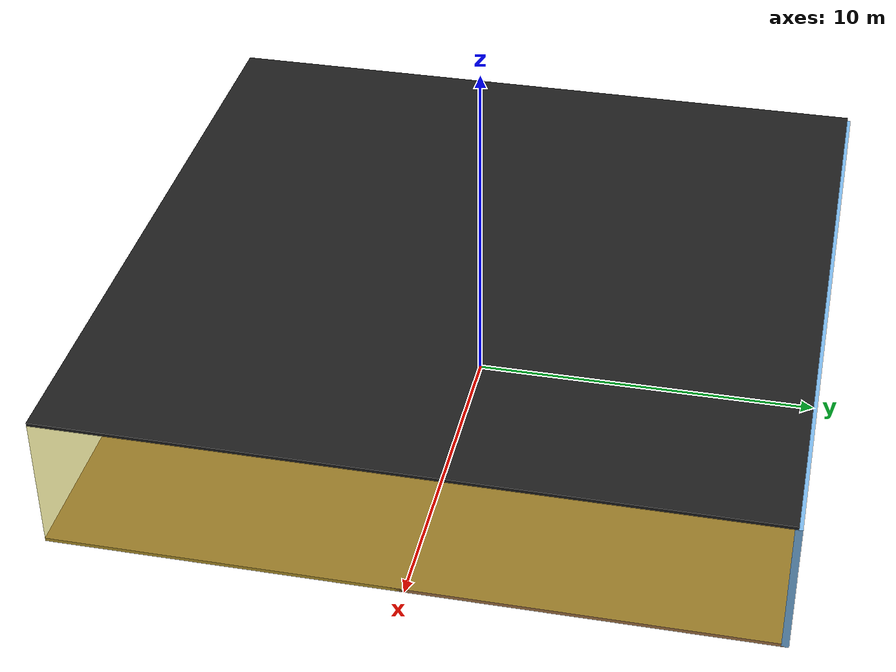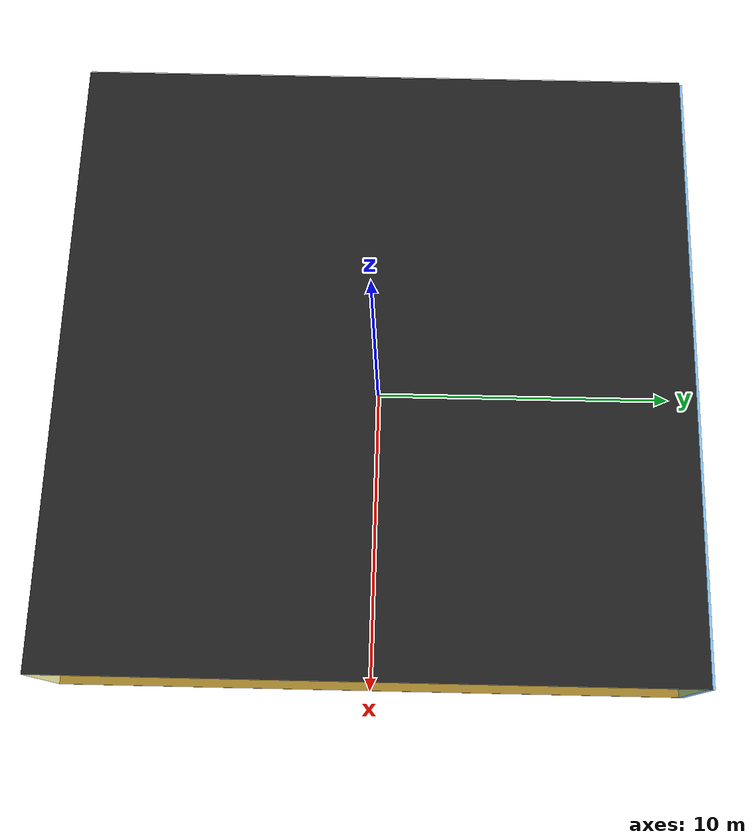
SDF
<sdf version="1.4">
 <world name="default">
  <physics type="ode">
   <max_step_size>0.001</max_step_size>
   <real_time_factor>1</real_time_factor>
   <real_time_update_rate>1000</real_time_update_rate>
   <gravity>0 0 -9.8</gravity>
  </physics>
  <scene><ambient>0.4 0.4 0.4 1</ambient><background>0.7 0.7 0.7 1</background><shadows>1</shadows></scene>
  <model name="Surrounding">
   <static>1</static>
   <link name="Ceiling">
    <collision name="Ceiling_Collision"><geometry><box><size>20 20 0.1</size></box></geometry></collision>
    <visual name="Ceiling_Visual">
     <geometry><box><size>20 20 0.1</size></box></geometry>
     <material>
      <script><uri>file://media/materials/scripts/gazebo.material</uri><name>Gazebo/Black</name></script>
     </material>
    </visual>
    <pose>0 0 4.05 0 0 0</pose>
   </link>
   <link name="Wall_South">
    <collision name="Wall_South_Collision">
     <geometry><box><size>20 0 4</size></box></geometry>
     <pose>0 0 2 0 -0 0</pose>
    </collision>
    <visual name="Wall_South_Visual">
     <pose>0 0 2 0 -0 0</pose>
     <geometry><box><size>20 0 4</size></box></geometry>
     <material>
      <script>
       <uri>file://media/materials/scripts/gazebo.material</uri>
       <name>Gazebo/YellowTransparent</name>
      </script>
     </material>
    </visual>
    <velocity_decay><linear>0</linear><angular>0</angular></velocity_decay>
    <pose>0 -10 0 0 -0 0</pose>
   </link>
   <link name="Wall_East">
    <collision name="Wall_21_Collision">
     <geometry><box><size>20 0 4</size></box></geometry>
     <pose>0 0 2 0 -0 0</pose>
    </collision>
    <visual name="Wall_21_Visual">
     <pose>0 0 2 0 -0 0</pose>
     <geometry><box><size>20 0 4</size></box></geometry>
     <material>
      <script>
       <uri>file://media/materials/scripts/gazebo.material</uri>
       <name>Gazebo/YellowTransparent</name>
      </script>
     </material>
    </visual>
    <velocity_decay><linear>0</linear><angular>0</angular></velocity_decay>
    <pose>10 0 0 0 -0 1.5708</pose>
   </link>
   <link name="Wall_North">
    <collision name="Wall_22_Collision">
     <geometry><box><size>20 0.2 4</size></box></geometry>
     <pose>0 0 2 0 -0 0</pose>
    </collision>
    <visual name="Wall_22_Visual">
     <pose>0 0 2 0 -0 0</pose>
     <geometry><box><size>20 0.2 4</size></box></geometry>
     <material>
      <script><uri>file://media/materials/scripts/gazebo.material</uri><name>Gazebo/SkyBlue</name></script>
     </material>
    </visual>
    <velocity_decay><linear>0</linear><angular>0</angular></velocity_decay>
    <pose>0 10 0 0 -0 0</pose>
   </link>
   <link name="Wall_West">
    <collision name="Wall_23_Collision">
     <geometry><box><size>20 0.2 4</size></box></geometry>
     <pose>0 0 2 0 -0 0</pose>
    </collision>
    <visual name="Wall_23_Visual">
     <pose>0 0 2 0 -0 0</pose>
     <geometry><box><size>20 0.2 4</size></box></geometry>
     <material>
      <script><uri>file://media/materials/scripts/gazebo.material</uri><name>Gazebo/CloudySky</name></script>
     </material>
    </visual>
    <velocity_decay><linear>0</linear><angular>0</angular></velocity_decay>
    <pose>-10 0 0 0 0 -1.5708</pose>
   </link>
   <link name="Ground_link">
    <collision name="collision">
     <pose>0 0 .05 0 -0 0</pose>
     <geometry><box><size>20 20 0.1</size></box></geometry>
    </collision>
    <visual name="visual">
     <pose>0 0 .05 0 -0 0</pose>
     <geometry><box><size>20 20 0.1</size></box></geometry>
     <material>
      <script><uri>file://media/materials/scripts/gazebo.material</uri><name>Gazebo/Wood</name></script>
     </material>
    </visual>
   </link>
   <static>1</static>
  </model>
  <spherical_coordinates>
   <surface_model>EARTH_WGS84</surface_model>
   <latitude_deg>0</latitude_deg>
   <longitude_deg>0</longitude_deg>
   <elevation>0</elevation>
   <heading_deg>0</heading_deg>
  </spherical_coordinates>
  <light name="lightball_0" type="diffuse">
   <diffuse>0.8 0.8 0.8 1</diffuse>
   <specular>0.2 0.2 0.2 1</specular>
   <attenuation>
    <range>100</range>
    <constant>0.7</constant>
    <linear>0.01</linear>
    <quadratic>0.001</quadratic>
   </attenuation>
   <direction>-0.5 0.1 -0.9</direction>
   <pose>-1.7942436161 -0.856177541613 2.42772838015 0 0 0</pose>
  </light>
  <light name="lightball_1" type="diffuse">
   <diffuse>0.8 0.8 0.8 1</diffuse>
   <specular>0.2 0.2 0.2 1</specular>
   <attenuation>
    <range>100</range>
    <constant>0.7</constant>
    <linear>0.01</linear>
    <quadratic>0.001</quadratic>
   </attenuation>
   <direction>-0.5 0.1 -0.9</direction>
   <pose>-4.45619768963 9.27742199598 2.99047560413 0 0 0</pose>
  </light>
  <light name="lightball_2" type="diffuse">
   <diffuse>0.8 0.8 0.8 1</diffuse>
   <specular>0.2 0.2 0.2 1</specular>
   <attenuation>
    <range>100</range>
    <constant>0.7</constant>
    <linear>0.01</linear>
    <quadratic>0.001</quadratic>
   </attenuation>
   <direction>-0.5 0.1 -0.9</direction>
   <pose>5.45523602292 -5.90669000924 3.05607450109 0 0 0</pose>
  </light>
  <include><uri>model://cabinet</uri><pose>-7.60729675442 -8.2930657218 0 0 0 0.333312195212</pose></include>
  <include><uri>model://cabinet</uri><pose>1.14733255966 7.53127785362 0 0 0 2.97735349648</pose></include>
 </world>
</sdf>

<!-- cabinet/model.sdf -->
<sdf version="1.5">
  <model name="cabinet">
    <static>true</static>
    <link name="cabinet_bottom_plate">
      <inertial>
        <pose>0 0 -1 0 0 0</pose>
        <inertia>
          <ixx>2.050000</ixx>
          <ixy>0</ixy>
          <ixz>0</ixz>
          <iyy>2.050000</iyy>
          <iyz>0</iyz>
          <izz>2.050000</izz>
        </inertia>
        <mass>25.000000</mass>
      </inertial>
      <collision name="cabinet_bottom_plate_geom">
        <pose>0 0 0.010000 0 0 0</pose>
        <geometry>
          <box>
            <size>0.450000 0.450000 0.020000</size>
          </box>
        </geometry>
      </collision>
      <visual name="cabinet_bottom_plate_geom_visual">
        <pose>0 0 0.010000 0 0 0</pose>
        <geometry>
          <box>
            <size>0.450000 0.450000 0.020000</size>
          </box>
        </geometry>
        <material>
          <script>
            <uri>model://media/materials/scripts/gazebo.material</uri>
            <name>Gazebo/Wood</name>
          </script>
        </material>
      </visual>
      <collision name="cabinet_bottom_plate_geom_cabinet_back_plate">
        <pose>0.235000 0 0.510000 0 0 0</pose>
        <geometry>
          <box>
            <size>0.020000 0.450000 1.020000</size>
          </box>
        </geometry>
      </collision>
      <visual name="cabinet_bottom_plate_geom_cabinet_back_plate_visual">
        <pose>0.235000 0 0.510000 0 0 0</pose>
        <geometry>
          <box>
            <size>0.020000 0.450000 1.020000</size>
          </box>
        </geometry>
        <material>
          <script>
            <uri>model://media/materials/scripts/gazebo.material</uri>
            <name>Gazebo/Wood</name>
          </script>
        </material>
      </visual>
      <collision name="cabinet_bottom_plate_geom_cabinet_left_plate">
        <pose>0 0.235000 0.510000 0 0 0</pose>
        <geometry>
          <box>
            <size>0.450000 0.020000 1.020000</size>
          </box>
        </geometry>
      </collision>
      <visual name="cabinet_bottom_plate_geom_cabinet_left_plate_visual">
        <pose>0 0.235000 0.510000 0 0 0</pose>
        <geometry>
          <box>
            <size>0.450000 0.020000 1.020000</size>
          </box>
        </geometry>
        <material>
          <script>
            <uri>model://media/materials/scripts/gazebo.material</uri>
            <name>Gazebo/Wood</name>
          </script>
        </material>
      </visual>
      <collision name="cabinet_bottom_plate_geom_cabinet_middle_plate">
        <pose>0 0 0.510000 0 0 0</pose>
        <geometry>
          <box>
            <size>0.450000 0.450000 0.020000</size>
          </box>
        </geometry>
      </collision>
      <visual name="cabinet_bottom_plate_geom_cabinet_middle_plate_visual">
        <pose>0 0 0.510000 0 0 0</pose>
        <geometry>
          <box>
            <size>0.450000 0.450000 0.020000</size>
          </box>
        </geometry>
        <material>
          <script>
            <uri>model://media/materials/scripts/gazebo.material</uri>
            <name>Gazebo/Wood</name>
          </script>
        </material>
      </visual>
      <collision name="cabinet_bottom_plate_geom_cabinet_right_plate">
        <pose>0 -0.235000 0.510000 0 0 0</pose>
        <geometry>
          <box>
            <size>0.450000 0.020000 1.020000</size>
          </box>
        </geometry>
      </collision>
      <visual name="cabinet_bottom_plate_geom_cabinet_right_plate_visual">
        <pose>0 -0.235000 0.510000 0 0 0</pose>
        <geometry>
          <box>
            <size>0.450000 0.020000 1.020000</size>
          </box>
        </geometry>
        <material>
          <script>
            <uri>model://media/materials/scripts/gazebo.material</uri>
            <name>Gazebo/Wood</name>
          </script>
        </material>
      </visual>
      <collision name="cabinet_bottom_plate_geom_cabinet_top_plate">
        <pose>0 0 1.010000 0 0 0</pose>
        <geometry>
          <box>
            <size>0.450000 0.450000 0.020000</size>
          </box>
        </geometry>
      </collision>
      <visual name="cabinet_bottom_plate_geom_cabinet_top_plate_visual">
        <pose>0 0 1.010000 0 0 0</pose>
        <geometry>
          <box>
            <size>0.450000 0.450000 0.020000</size>
          </box>
        </geometry>
        <material>
          <script>
            <uri>model://media/materials/scripts/gazebo.material</uri>
            <name>Gazebo/Wood</name>
          </script>
        </material>
      </visual>
    </link>
  </model>
</sdf>
